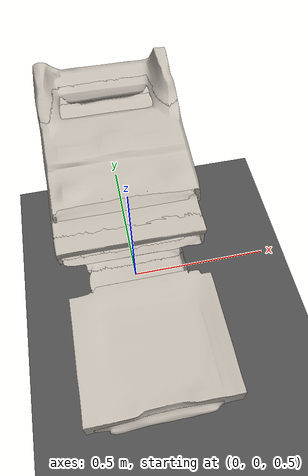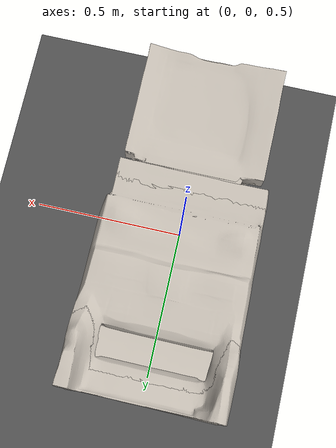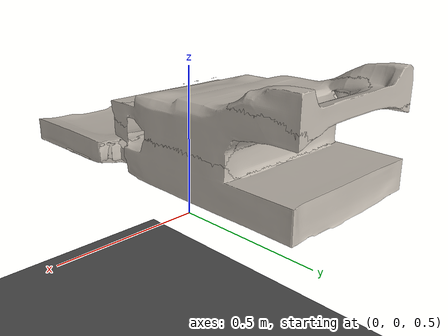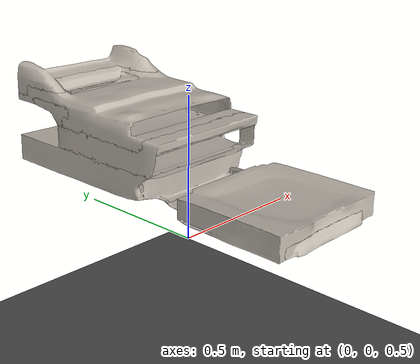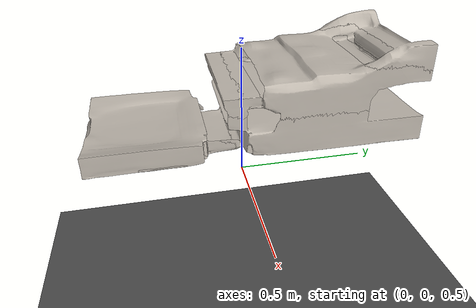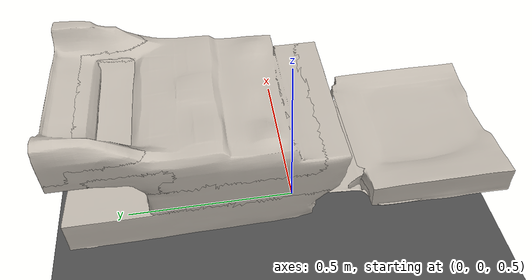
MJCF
<?xml version='1.0' encoding='utf-8'?>
<mujoco model="test">
    <compiler angle="radian" autolimits="true" />
    <option timestep="0.002" gravity="0 0 -9.81" wind="0 0 0" integrator="implicitfast" density="1.225" viscosity="1.8e-05" />
    <visual>
        <global realtime="1" />
        <quality shadowsize="16384" numslices="28" offsamples="4" />
        <headlight diffuse="2 2 2" specular="0.5 0.5 0.5" active="1" />
        <rgba fog="0 1 0 1" haze="1 0 0 1" />
    </visual>
    <asset>
        <mesh name="l_0_Back Surface" file="./objs/0/0.obj" scale="1.2 1.2 1.2" />
        <texture type="2d" name="l_0_Back Surface_tex" file="./objs/0/material_0.png" />
        <material name="l_0_Back Surface_img" texture="l_0_Back Surface_tex" />
        <mesh name="l_1_Back Support" file="./objs/1/1.obj" scale="1.2 1.2 1.2" />
        <texture type="2d" name="l_1_Back Support_tex" file="./objs/1/material_0.png" />
        <material name="l_1_Back Support_img" texture="l_1_Back Support_tex" />
        <mesh name="l_2_Seat Surface" file="./objs/2/2.obj" scale="1.2 1.2 1.2" />
        <texture type="2d" name="l_2_Seat Surface_tex" file="./objs/2/material_0.png" />
        <material name="l_2_Seat Surface_img" texture="l_2_Seat Surface_tex" />
        <mesh name="l_3_Seat Support" file="./objs/3/3.obj" scale="1.2 1.2 1.2" />
        <texture type="2d" name="l_3_Seat Support_tex" file="./objs/3/material_0.png" />
        <material name="l_3_Seat Support_img" texture="l_3_Seat Support_tex" />
        <mesh name="l_4_Ground Surface" file="./objs/4/4.obj" scale="1.2 1.2 1.2" />
        <texture type="2d" name="l_4_Ground Surface_tex" file="./objs/4/material_0.png" />
        <material name="l_4_Ground Surface_img" texture="l_4_Ground Surface_tex" />
        <mesh name="l_5_Footrest" file="./objs/5/5.obj" scale="1.2 1.2 1.2" />
        <texture type="2d" name="l_5_Footrest_tex" file="./objs/5/material_0.png" />
        <material name="l_5_Footrest_img" texture="l_5_Footrest_tex" />
        <texture type="skybox" file="./desert.png" gridsize="3 4" gridlayout=".U..LFRB.D.." />
        <texture name="plane" type="2d" builtin="checker" rgb1=".1 .1 .1" rgb2=".5 .5 .5" width="512" height="512" mark="cross" markrgb=".8 .8 .8" />
        <material name="plane" reflectance="0.3" texture="plane" texrepeat="1 1" texuniform="true" />
    </asset>
    <default>
        <geom solref=".5e-4" solimp="0.9 0.99 1e-4" fluidcoef="0.5 0.25 0.5 2.0 1.0" />
        <default class="l_0_Back Surface">
            <geom type="mesh" mesh="l_0_Back Surface" contype="1" conaffinity="1" density="30.0" fluidshape="ellipsoid" />
        </default>
        <default class="l_1_Back Support">
            <geom type="mesh" mesh="l_1_Back Support" contype="1" conaffinity="1" density="600.0" fluidshape="ellipsoid" />
        </default>
        <default class="l_2_Seat Surface">
            <geom type="mesh" mesh="l_2_Seat Surface" contype="1" conaffinity="1" density="30.0" fluidshape="ellipsoid" />
        </default>
        <default class="l_3_Seat Support">
            <geom type="mesh" mesh="l_3_Seat Support" contype="1" conaffinity="1" density="600.0" fluidshape="ellipsoid" />
        </default>
        <default class="l_4_Ground Surface">
            <geom type="mesh" mesh="l_4_Ground Surface" contype="1" conaffinity="1" density="600.0" fluidshape="ellipsoid" />
        </default>
        <default class="l_5_Footrest">
            <geom type="mesh" mesh="l_5_Footrest" contype="1" conaffinity="1" density="30.0" fluidshape="ellipsoid" />
        </default>
    </default>
    <worldbody>
        <geom name="floor" pos="0 0 0" size="0 0 .25" type="plane" material="plane" condim="6" />
        <light directional="true" ambient=".3 .3 .3" pos="30 30 30" dir="0 -2 -1" diffuse=".5 .5 .5" specular=".5 .5 .5" />
        <body name="base" pos="0 0 1" euler="0 0 0">
            <freejoint />
            <geom class="l_2_Seat Surface" material="l_2_Seat Surface_img" />
            <geom class="l_3_Seat Support" material="l_3_Seat Support_img" />
            <geom class="l_4_Ground Surface" material="l_4_Ground Surface_img" />
            <body name="grouppart_1" pos="0 0 0">
                <joint type="hinge" name="pivot_1" axis="1.0 0.0 0.0" pos="-0.6 0.17699999999999996 -0.208875" range="-0.17453292519943295 0.0" damping="0.001" frictionloss="0.0" stiffness="0" />
                <geom class="l_0_Back Surface" material="l_0_Back Surface_img" />
                <geom class="l_1_Back Support" material="l_1_Back Support_img" />
            </body>
        </body>
        <body name="grouppart_2" pos="0 0 1" euler="0 0 0">
            <freejoint />
            <geom class="l_5_Footrest" material="l_5_Footrest_img" />
        </body>
    </worldbody>
</mujoco>
